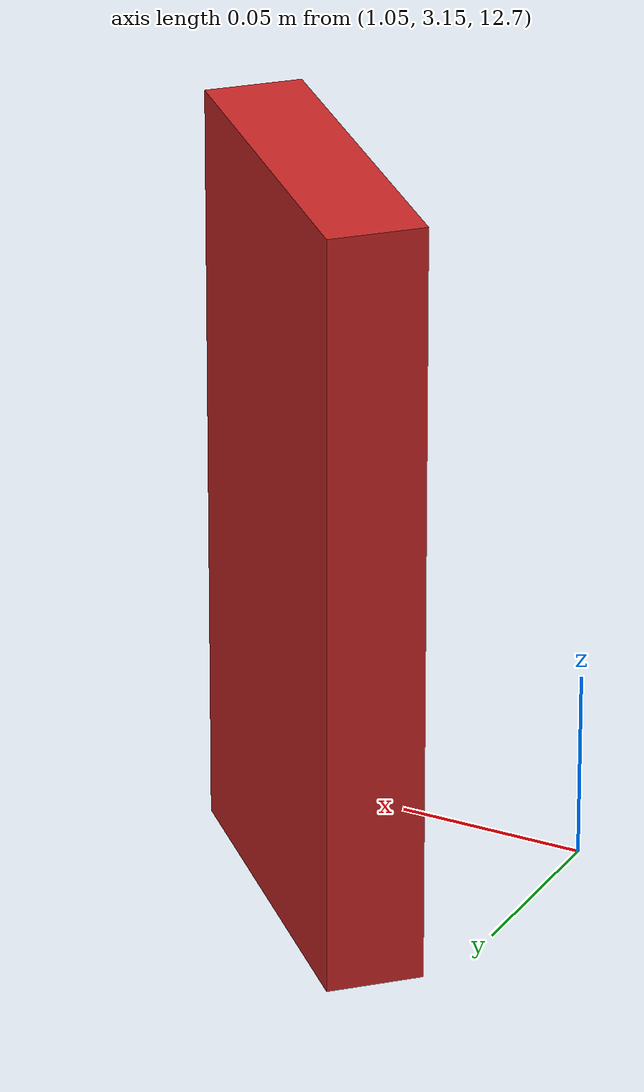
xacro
<?xml version="1.0" ?>
<robot name="${room_name}_camera" xmlns:xacro="http://ros.org/wiki/xacro" xmlns:xi="http://www.w3.org/2001/XInclude" xmlns:gazebo="http://playerstage.sourceforge.net/gazebo/xmlschema/#gz" xmlns:model="http://playerstage.sourceforge.net/gazebo/xmlschema/#model" xmlns:sensor="http://playerstage.sourceforge.net/gazebo/xmlschema/#sensor" xmlns:body="http://playerstage.sourceforge.net/gazebo/xmlschema/#body" xmlns:geom="http://playerstage.sourceforge.net/gazebo/xmlschema/#geom" xmlns:joint="http://playerstage.sourceforge.net/gazebo/xmlschema/#joint" xmlns:interface="http://playerstage.sourceforge.net/gazebo/xmlschema/#interface" xmlns:rendering="http://playerstage.sourceforge.net/gazebo/xmlschema/#rendering" xmlns:renderable="http://playerstage.sourceforge.net/gazebo/xmlschema/#renderable" xmlns:controller="http://playerstage.sourceforge.net/gazebo/xmlschema/#controller" xmlns:physics="http://playerstage.sourceforge.net/gazebo/xmlschema/#physics">
    <property name="room_name" value="entrance_f1" />
    <property name="x_position" value="6.1" />
    <property name="y_position" value="8.2" />
    <property name="z_position" value="12.8" />
    <property name="x_world_offset" value="-5" />
    <property name="y_world_offset" value="-5" />
    <property name="yaw" value="-2.355" />
    <property name="roll" value="0" />
    <property name="pitch" value="0" />
    <link name="world" />
    <joint name="camera_joint" type="fixed">
        <axis xyz="1 0 0" />
        <parent link="world" />
        <origin xyz="${x_position + x_world_offset} ${y_position + y_world_offset} ${z_position}" rpy="${roll} ${pitch} ${yaw+3.14}" />
        <child link="camera_block" />
    </joint>
    <link name="camera_block">
        <inertial>
            <origin xyz="0 0 0" rpy="0 0 0" />
            <mass value="0.3" />
            <inertia ixx="0.3" ixy="0.0" ixz="0.0" iyy="0.001" iyz="0.0" izz="0.05" />
        </inertial>
        <visual>
            <origin xyz="0 0 0" rpy="0 0 0" />
            <geometry>
                <box size=".025 .1 .2" />
            </geometry>
        </visual>
        <collision name="camera_block">
            <origin xyz="0 0 0" rpy="0 0 0" />
            <geometry>
                <box size=".025 .1 .2" />
            </geometry>
        </collision>
    </link>
    <gazebo reference="camera_block">
        <sensor:camera name="camera">
            <imageFormat>R8G8B8</imageFormat>
            <imageSize>640 480</imageSize>
            <hfov>60</hfov>
            <nearClip>0.05</nearClip>
            <farClip>3</farClip>
            <updateRate>20</updateRate>
            <baseline>0.1</baseline>
            <controller:gazebo_ros_openni_kinect name="kinect_camera_controller" plugin="libgazebo_ros_openni_kinect.so">
                <alwaysOn>true</alwaysOn>
                <updateRate>20</updateRate>
                <imageTopicName>/${room_name}_camera/image_raw</imageTopicName>
                <cameraInfoTopicName>/${room_name}_camera/camera_info</cameraInfoTopicName>
                <pointCloudTopicName>/${room_name}_camera/depth/points</pointCloudTopicName>
                <robotNamespace>camera</robotNamespace>
                <distortion_k1>0.0</distortion_k1>
                <distortion_k2>0.0</distortion_k2>
                <distortion_k3>0.0</distortion_k3>
                <distortion_t1>0.0</distortion_t1>
                <distortion_t2>0.0</distortion_t2>
            </controller:gazebo_ros_openni_kinect>
        </sensor:camera>
        <material>Gazebo/Red</material>
        <turnGravityOff>true</turnGravityOff>
    </gazebo>
</robot>
